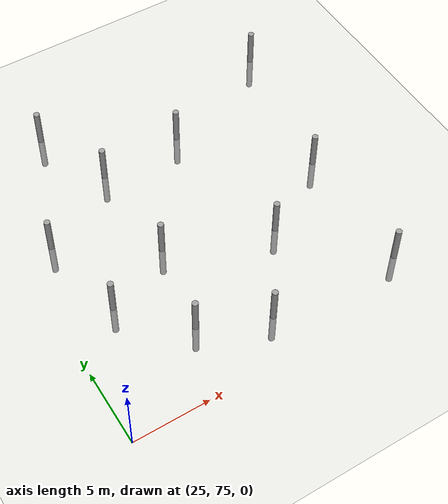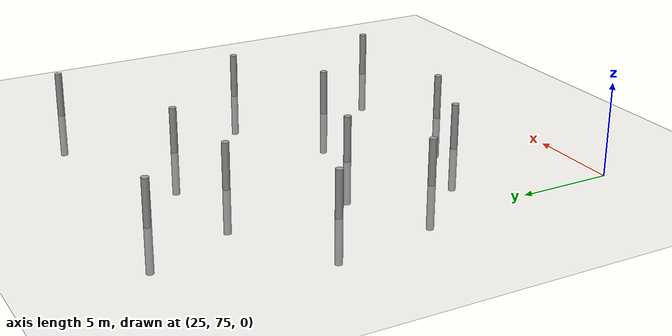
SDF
<sdf version="1.6">
 <world name="default">
  <model name="ground_plane">
   <static>1</static>
   <link name="link">
    <collision name="collision">
     <geometry><plane><normal>0 0 1</normal><size>100 100</size></plane></geometry>
     <surface><friction><ode><mu>100</mu><mu2>50</mu2></ode></friction></surface>
    </collision>
    <visual name="visual">
     <cast_shadows>0</cast_shadows>
     <geometry><plane><normal>0 0 1</normal><size>100 100</size></plane></geometry>
     <material>
      <script><uri>file://media/materials/scripts/gazebo.material</uri><name>Gazebo/Grey</name></script>
     </material>
    </visual>
   </link>
  </model>
  <model name="empty_pillars_1">
   <model name="empty_pillar_clone_1">
    <link name="link">
     <inertial>
      <mass>1</mass>
      <inertia><ixx>0.145833</ixx><ixy>0</ixy><ixz>0</ixz><iyy>0.145833</iyy><iyz>0</iyz><izz>0.125</izz></inertia>
     </inertial>
     <visual name="visual">
      <geometry><cylinder><radius>0.2</radius><length>5</length></cylinder></geometry>
      <material>
       <script><name>Gazebo/Grey</name><uri>file://media/materials/scripts/gazebo.material</uri></script>
       <shader type="vertex"><normal_map>__default__</normal_map></shader>
       <ambient>0.3 0.3 0.3 1</ambient>
       <diffuse>0.7 0.7 0.7 1</diffuse>
       <specular>0.01 0.01 0.01 1</specular>
       <emissive>0 0 0 1</emissive>
      </material>
     </visual>
     <collision name="collision">
      <geometry><cylinder><radius>0.05</radius><length>5</length></cylinder></geometry>
      <surface>
       <friction>
        <ode><mu>1</mu><mu2>1</mu2><fdir1>0 0 0</fdir1><slip1>0</slip1><slip2>0</slip2></ode>
        <torsional>
         <coefficient>1</coefficient>
         <patch_radius>0</patch_radius>
         <surface_radius>0</surface_radius>
         <use_patch_radius>1</use_patch_radius>
         <ode><slip>0</slip></ode>
        </torsional>
       </friction>
       <bounce><restitution_coefficient>0</restitution_coefficient><threshold>1e+06</threshold></bounce>
       <contact>
        <collide_without_contact>0</collide_without_contact>
        <collide_without_contact_bitmask>1</collide_without_contact_bitmask>
        <collide_bitmask>1</collide_bitmask>
        <ode>
         <soft_cfm>0</soft_cfm>
         <soft_erp>0.2</soft_erp>
         <kp>1e+13</kp>
         <kd>1</kd>
         <max_vel>0.01</max_vel>
         <min_depth>0</min_depth>
        </ode>
        <bullet>
         <split_impulse>1</split_impulse>
         <split_impulse_penetration_threshold>-0.01</split_impulse_penetration_threshold>
         <soft_cfm>0</soft_cfm>
         <soft_erp>0.2</soft_erp>
         <kp>1e+13</kp>
         <kd>1</kd>
        </bullet>
       </contact>
      </surface>
     </collision>
    </link>
    <static>0</static>
    <pose>8.92248 2.14838 0 0 -0 0</pose>
   </model>
   <model name="empty_pillar_clone_26">
    <link name="link">
     <inertial>
      <mass>1</mass>
      <inertia><ixx>0.145833</ixx><ixy>0</ixy><ixz>0</ixz><iyy>0.145833</iyy><iyz>0</iyz><izz>0.125</izz></inertia>
     </inertial>
     <visual name="visual">
      <geometry><cylinder><radius>0.2</radius><length>5</length></cylinder></geometry>
      <material>
       <script><name>Gazebo/Grey</name><uri>file://media/materials/scripts/gazebo.material</uri></script>
       <shader type="vertex"><normal_map>__default__</normal_map></shader>
       <ambient>0.3 0.3 0.3 1</ambient>
       <diffuse>0.7 0.7 0.7 1</diffuse>
       <specular>0.01 0.01 0.01 1</specular>
       <emissive>0 0 0 1</emissive>
      </material>
     </visual>
     <collision name="collision">
      <geometry><cylinder><radius>0.05</radius><length>5</length></cylinder></geometry>
      <surface>
       <friction>
        <ode><mu>1</mu><mu2>1</mu2><fdir1>0 0 0</fdir1><slip1>0</slip1><slip2>0</slip2></ode>
        <torsional>
         <coefficient>1</coefficient>
         <patch_radius>0</patch_radius>
         <surface_radius>0</surface_radius>
         <use_patch_radius>1</use_patch_radius>
         <ode><slip>0</slip></ode>
        </torsional>
       </friction>
       <bounce><restitution_coefficient>0</restitution_coefficient><threshold>1e+06</threshold></bounce>
       <contact>
        <collide_without_contact>0</collide_without_contact>
        <collide_without_contact_bitmask>1</collide_without_contact_bitmask>
        <collide_bitmask>1</collide_bitmask>
        <ode>
         <soft_cfm>0</soft_cfm>
         <soft_erp>0.2</soft_erp>
         <kp>1e+13</kp>
         <kd>1</kd>
         <max_vel>0.01</max_vel>
         <min_depth>0</min_depth>
        </ode>
        <bullet>
         <split_impulse>1</split_impulse>
         <split_impulse_penetration_threshold>-0.01</split_impulse_penetration_threshold>
         <soft_cfm>0</soft_cfm>
         <soft_erp>0.2</soft_erp>
         <kp>1e+13</kp>
         <kd>1</kd>
        </bullet>
       </contact>
      </surface>
     </collision>
    </link>
    <static>0</static>
    <pose>7.70652 20.1444 0 0 -0 0</pose>
   </model>
   <model name="empty_pillar_clone_27">
    <link name="link">
     <inertial>
      <mass>1</mass>
      <inertia><ixx>0.145833</ixx><ixy>0</ixy><ixz>0</ixz><iyy>0.145833</iyy><iyz>0</iyz><izz>0.125</izz></inertia>
     </inertial>
     <visual name="visual">
      <geometry><cylinder><radius>0.2</radius><length>5</length></cylinder></geometry>
      <material>
       <script><name>Gazebo/Grey</name><uri>file://media/materials/scripts/gazebo.material</uri></script>
       <shader type="vertex"><normal_map>__default__</normal_map></shader>
       <ambient>0.3 0.3 0.3 1</ambient>
       <diffuse>0.7 0.7 0.7 1</diffuse>
       <specular>0.01 0.01 0.01 1</specular>
       <emissive>0 0 0 1</emissive>
      </material>
     </visual>
     <collision name="collision">
      <geometry><cylinder><radius>0.05</radius><length>5</length></cylinder></geometry>
      <surface>
       <friction>
        <ode><mu>1</mu><mu2>1</mu2><fdir1>0 0 0</fdir1><slip1>0</slip1><slip2>0</slip2></ode>
        <torsional>
         <coefficient>1</coefficient>
         <patch_radius>0</patch_radius>
         <surface_radius>0</surface_radius>
         <use_patch_radius>1</use_patch_radius>
         <ode><slip>0</slip></ode>
        </torsional>
       </friction>
       <bounce><restitution_coefficient>0</restitution_coefficient><threshold>1e+06</threshold></bounce>
       <contact>
        <collide_without_contact>0</collide_without_contact>
        <collide_without_contact_bitmask>1</collide_without_contact_bitmask>
        <collide_bitmask>1</collide_bitmask>
        <ode>
         <soft_cfm>0</soft_cfm>
         <soft_erp>0.2</soft_erp>
         <kp>1e+13</kp>
         <kd>1</kd>
         <max_vel>0.01</max_vel>
         <min_depth>0</min_depth>
        </ode>
        <bullet>
         <split_impulse>1</split_impulse>
         <split_impulse_penetration_threshold>-0.01</split_impulse_penetration_threshold>
         <soft_cfm>0</soft_cfm>
         <soft_erp>0.2</soft_erp>
         <kp>1e+13</kp>
         <kd>1</kd>
        </bullet>
       </contact>
      </surface>
     </collision>
    </link>
    <static>0</static>
    <pose>4.32163 11.823 0 0 -0 0</pose>
   </model>
   <model name="empty_pillar_clone_28">
    <link name="link">
     <inertial>
      <mass>1</mass>
      <inertia><ixx>0.145833</ixx><ixy>0</ixy><ixz>0</ixz><iyy>0.145833</iyy><iyz>0</iyz><izz>0.125</izz></inertia>
     </inertial>
     <visual name="visual">
      <geometry><cylinder><radius>0.2</radius><length>5</length></cylinder></geometry>
      <material>
       <script><name>Gazebo/Grey</name><uri>file://media/materials/scripts/gazebo.material</uri></script>
       <shader type="vertex"><normal_map>__default__</normal_map></shader>
       <ambient>0.3 0.3 0.3 1</ambient>
       <diffuse>0.7 0.7 0.7 1</diffuse>
       <specular>0.01 0.01 0.01 1</specular>
       <emissive>0 0 0 1</emissive>
      </material>
     </visual>
     <collision name="collision">
      <geometry><cylinder><radius>0.05</radius><length>5</length></cylinder></geometry>
      <surface>
       <friction>
        <ode><mu>1</mu><mu2>1</mu2><fdir1>0 0 0</fdir1><slip1>0</slip1><slip2>0</slip2></ode>
        <torsional>
         <coefficient>1</coefficient>
         <patch_radius>0</patch_radius>
         <surface_radius>0</surface_radius>
         <use_patch_radius>1</use_patch_radius>
         <ode><slip>0</slip></ode>
        </torsional>
       </friction>
       <bounce><restitution_coefficient>0</restitution_coefficient><threshold>1e+06</threshold></bounce>
       <contact>
        <collide_without_contact>0</collide_without_contact>
        <collide_without_contact_bitmask>1</collide_without_contact_bitmask>
        <collide_bitmask>1</collide_bitmask>
        <ode>
         <soft_cfm>0</soft_cfm>
         <soft_erp>0.2</soft_erp>
         <kp>1e+13</kp>
         <kd>1</kd>
         <max_vel>0.01</max_vel>
         <min_depth>0</min_depth>
        </ode>
        <bullet>
         <split_impulse>1</split_impulse>
         <split_impulse_penetration_threshold>-0.01</split_impulse_penetration_threshold>
         <soft_cfm>0</soft_cfm>
         <soft_erp>0.2</soft_erp>
         <kp>1e+13</kp>
         <kd>1</kd>
        </bullet>
       </contact>
      </surface>
     </collision>
    </link>
    <static>0</static>
    <pose>15.5447 15.5867 0 0 -0 0</pose>
   </model>
   <model name="empty_pillar_clone_29">
    <link name="link">
     <inertial>
      <mass>1</mass>
      <inertia><ixx>0.145833</ixx><ixy>0</ixy><ixz>0</ixz><iyy>0.145833</iyy><iyz>0</iyz><izz>0.125</izz></inertia>
     </inertial>
     <visual name="visual">
      <geometry><cylinder><radius>0.2</radius><length>5</length></cylinder></geometry>
      <material>
       <script><name>Gazebo/Grey</name><uri>file://media/materials/scripts/gazebo.material</uri></script>
       <shader type="vertex"><normal_map>__default__</normal_map></shader>
       <ambient>0.3 0.3 0.3 1</ambient>
       <diffuse>0.7 0.7 0.7 1</diffuse>
       <specular>0.01 0.01 0.01 1</specular>
       <emissive>0 0 0 1</emissive>
      </material>
     </visual>
     <collision name="collision">
      <geometry><cylinder><radius>0.05</radius><length>5</length></cylinder></geometry>
      <surface>
       <friction>
        <ode><mu>1</mu><mu2>1</mu2><fdir1>0 0 0</fdir1><slip1>0</slip1><slip2>0</slip2></ode>
        <torsional>
         <coefficient>1</coefficient>
         <patch_radius>0</patch_radius>
         <surface_radius>0</surface_radius>
         <use_patch_radius>1</use_patch_radius>
         <ode><slip>0</slip></ode>
        </torsional>
       </friction>
       <bounce><restitution_coefficient>0</restitution_coefficient><threshold>1e+06</threshold></bounce>
       <contact>
        <collide_without_contact>0</collide_without_contact>
        <collide_without_contact_bitmask>1</collide_without_contact_bitmask>
        <collide_bitmask>1</collide_bitmask>
        <ode>
         <soft_cfm>0</soft_cfm>
         <soft_erp>0.2</soft_erp>
         <kp>1e+13</kp>
         <kd>1</kd>
         <max_vel>0.01</max_vel>
         <min_depth>0</min_depth>
        </ode>
        <bullet>
         <split_impulse>1</split_impulse>
         <split_impulse_penetration_threshold>-0.01</split_impulse_penetration_threshold>
         <soft_cfm>0</soft_cfm>
         <soft_erp>0.2</soft_erp>
         <kp>1e+13</kp>
         <kd>1</kd>
        </bullet>
       </contact>
      </surface>
     </collision>
    </link>
    <static>0</static>
    <pose>10.08 8.0876 0 0 -0 0</pose>
   </model>
   <model name="empty_pillar_clone_30">
    <link name="link">
     <inertial>
      <mass>1</mass>
      <inertia><ixx>0.145833</ixx><ixy>0</ixy><ixz>0</ixz><iyy>0.145833</iyy><iyz>0</iyz><izz>0.125</izz></inertia>
     </inertial>
     <visual name="visual">
      <geometry><cylinder><radius>0.2</radius><length>5</length></cylinder></geometry>
      <material>
       <script><name>Gazebo/Grey</name><uri>file://media/materials/scripts/gazebo.material</uri></script>
       <shader type="vertex"><normal_map>__default__</normal_map></shader>
       <ambient>0.3 0.3 0.3 1</ambient>
       <diffuse>0.7 0.7 0.7 1</diffuse>
       <specular>0.01 0.01 0.01 1</specular>
       <emissive>0 0 0 1</emissive>
      </material>
     </visual>
     <collision name="collision">
      <geometry><cylinder><radius>0.05</radius><length>5</length></cylinder></geometry>
      <surface>
       <friction>
        <ode><mu>1</mu><mu2>1</mu2><fdir1>0 0 0</fdir1><slip1>0</slip1><slip2>0</slip2></ode>
        <torsional>
         <coefficient>1</coefficient>
         <patch_radius>0</patch_radius>
         <surface_radius>0</surface_radius>
         <use_patch_radius>1</use_patch_radius>
         <ode><slip>0</slip></ode>
        </torsional>
       </friction>
       <bounce><restitution_coefficient>0</restitution_coefficient><threshold>1e+06</threshold></bounce>
       <contact>
        <collide_without_contact>0</collide_without_contact>
        <collide_without_contact_bitmask>1</collide_without_contact_bitmask>
        <collide_bitmask>1</collide_bitmask>
        <ode>
         <soft_cfm>0</soft_cfm>
         <soft_erp>0.2</soft_erp>
         <kp>1e+13</kp>
         <kd>1</kd>
         <max_vel>0.01</max_vel>
         <min_depth>0</min_depth>
        </ode>
        <bullet>
         <split_impulse>1</split_impulse>
         <split_impulse_penetration_threshold>-0.01</split_impulse_penetration_threshold>
         <soft_cfm>0</soft_cfm>
         <soft_erp>0.2</soft_erp>
         <kp>1e+13</kp>
         <kd>1</kd>
        </bullet>
       </contact>
      </surface>
     </collision>
    </link>
    <static>0</static>
    <pose>23.752 19.2231 0 0 -0 0</pose>
   </model>
   <model name="empty_pillar_clone_31">
    <link name="link">
     <inertial>
      <mass>1</mass>
      <inertia><ixx>0.145833</ixx><ixy>0</ixy><ixz>0</ixz><iyy>0.145833</iyy><iyz>0</iyz><izz>0.125</izz></inertia>
     </inertial>
     <visual name="visual">
      <geometry><cylinder><radius>0.2</radius><length>5</length></cylinder></geometry>
      <material>
       <script><name>Gazebo/Grey</name><uri>file://media/materials/scripts/gazebo.material</uri></script>
       <shader type="vertex"><normal_map>__default__</normal_map></shader>
       <ambient>0.3 0.3 0.3 1</ambient>
       <diffuse>0.7 0.7 0.7 1</diffuse>
       <specular>0.01 0.01 0.01 1</specular>
       <emissive>0 0 0 1</emissive>
      </material>
     </visual>
     <collision name="collision">
      <geometry><cylinder><radius>0.05</radius><length>5</length></cylinder></geometry>
      <surface>
       <friction>
        <ode><mu>1</mu><mu2>1</mu2><fdir1>0 0 0</fdir1><slip1>0</slip1><slip2>0</slip2></ode>
        <torsional>
         <coefficient>1</coefficient>
         <patch_radius>0</patch_radius>
         <surface_radius>0</surface_radius>
         <use_patch_radius>1</use_patch_radius>
         <ode><slip>0</slip></ode>
        </torsional>
       </friction>
       <bounce><restitution_coefficient>0</restitution_coefficient><threshold>1e+06</threshold></bounce>
       <contact>
        <collide_without_contact>0</collide_without_contact>
        <collide_without_contact_bitmask>1</collide_without_contact_bitmask>
        <collide_bitmask>1</collide_bitmask>
        <ode>
         <soft_cfm>0</soft_cfm>
         <soft_erp>0.2</soft_erp>
         <kp>1e+13</kp>
         <kd>1</kd>
         <max_vel>0.01</max_vel>
         <min_depth>0</min_depth>
        </ode>
        <bullet>
         <split_impulse>1</split_impulse>
         <split_impulse_penetration_threshold>-0.01</split_impulse_penetration_threshold>
         <soft_cfm>0</soft_cfm>
         <soft_erp>0.2</soft_erp>
         <kp>1e+13</kp>
         <kd>1</kd>
        </bullet>
       </contact>
      </surface>
     </collision>
    </link>
    <static>0</static>
    <pose>22.0722 9.04182 0 0 -0 0</pose>
   </model>
   <model name="empty_pillar_clone_32">
    <link name="link">
     <inertial>
      <mass>1</mass>
      <inertia><ixx>0.145833</ixx><ixy>0</ixy><ixz>0</ixz><iyy>0.145833</iyy><iyz>0</iyz><izz>0.125</izz></inertia>
     </inertial>
     <visual name="visual">
      <geometry><cylinder><radius>0.2</radius><length>5</length></cylinder></geometry>
      <material>
       <script><name>Gazebo/Grey</name><uri>file://media/materials/scripts/gazebo.material</uri></script>
       <shader type="vertex"><normal_map>__default__</normal_map></shader>
       <ambient>0.3 0.3 0.3 1</ambient>
       <diffuse>0.7 0.7 0.7 1</diffuse>
       <specular>0.01 0.01 0.01 1</specular>
       <emissive>0 0 0 1</emissive>
      </material>
     </visual>
     <collision name="collision">
      <geometry><cylinder><radius>0.05</radius><length>5</length></cylinder></geometry>
      <surface>
       <friction>
        <ode><mu>1</mu><mu2>1</mu2><fdir1>0 0 0</fdir1><slip1>0</slip1><slip2>0</slip2></ode>
        <torsional>
         <coefficient>1</coefficient>
         <patch_radius>0</patch_radius>
         <surface_radius>0</surface_radius>
         <use_patch_radius>1</use_patch_radius>
         <ode><slip>0</slip></ode>
        </torsional>
       </friction>
       <bounce><restitution_coefficient>0</restitution_coefficient><threshold>1e+06</threshold></bounce>
       <contact>
        <collide_without_contact>0</collide_without_contact>
        <collide_without_contact_bitmask>1</collide_without_contact_bitmask>
        <collide_bitmask>1</collide_bitmask>
        <ode>
         <soft_cfm>0</soft_cfm>
         <soft_erp>0.2</soft_erp>
         <kp>1e+13</kp>
         <kd>1</kd>
         <max_vel>0.01</max_vel>
         <min_depth>0</min_depth>
        </ode>
        <bullet>
         <split_impulse>1</split_impulse>
         <split_impulse_penetration_threshold>-0.01</split_impulse_penetration_threshold>
         <soft_cfm>0</soft_cfm>
         <soft_erp>0.2</soft_erp>
         <kp>1e+13</kp>
         <kd>1</kd>
        </bullet>
       </contact>
      </surface>
     </collision>
    </link>
    <static>0</static>
    <pose>21.9854 0.15966 0 0 -0 0</pose>
   </model>
   <model name="empty_pillar_clone_49">
    <link name="link">
     <inertial>
      <mass>1</mass>
      <inertia><ixx>0.145833</ixx><ixy>0</ixy><ixz>0</ixz><iyy>0.145833</iyy><iyz>0</iyz><izz>0.125</izz></inertia>
     </inertial>
     <visual name="visual">
      <geometry><cylinder><radius>0.2</radius><length>5</length></cylinder></geometry>
      <material>
       <script><name>Gazebo/Grey</name><uri>file://media/materials/scripts/gazebo.material</uri></script>
       <shader type="vertex"><normal_map>__default__</normal_map></shader>
       <ambient>0.3 0.3 0.3 1</ambient>
       <diffuse>0.7 0.7 0.7 1</diffuse>
       <specular>0.01 0.01 0.01 1</specular>
       <emissive>0 0 0 1</emissive>
      </material>
     </visual>
     <collision name="collision">
      <geometry><cylinder><radius>0.05</radius><length>5</length></cylinder></geometry>
      <surface>
       <friction>
        <ode><mu>1</mu><mu2>1</mu2><fdir1>0 0 0</fdir1><slip1>0</slip1><slip2>0</slip2></ode>
        <torsional>
         <coefficient>1</coefficient>
         <patch_radius>0</patch_radius>
         <surface_radius>0</surface_radius>
         <use_patch_radius>1</use_patch_radius>
         <ode><slip>0</slip></ode>
        </torsional>
       </friction>
       <bounce><restitution_coefficient>0</restitution_coefficient><threshold>1e+06</threshold></bounce>
       <contact>
        <collide_without_contact>0</collide_without_contact>
        <collide_without_contact_bitmask>1</collide_without_contact_bitmask>
        <collide_bitmask>1</collide_bitmask>
        <ode>
         <soft_cfm>0</soft_cfm>
         <soft_erp>0.2</soft_erp>
         <kp>1e+13</kp>
         <kd>1</kd>
         <max_vel>0.01</max_vel>
         <min_depth>0</min_depth>
        </ode>
        <bullet>
         <split_impulse>1</split_impulse>
         <split_impulse_penetration_threshold>-0.01</split_impulse_penetration_threshold>
         <soft_cfm>0</soft_cfm>
         <soft_erp>0.2</soft_erp>
         <kp>1e+13</kp>
         <kd>1</kd>
        </bullet>
       </contact>
      </surface>
     </collision>
    </link>
    <static>0</static>
    <pose>9.84768 15.1425 0 0 -0 0</pose>
   </model>
   <model name="empty_pillar_clone_55">
    <link name="link">
     <inertial>
      <mass>1</mass>
      <inertia><ixx>0.145833</ixx><ixy>0</ixy><ixz>0</ixz><iyy>0.145833</iyy><iyz>0</iyz><izz>0.125</izz></inertia>
     </inertial>
     <visual name="visual">
      <geometry><cylinder><radius>0.2</radius><length>5</length></cylinder></geometry>
      <material>
       <script><name>Gazebo/Grey</name><uri>file://media/materials/scripts/gazebo.material</uri></script>
       <shader type="vertex"><normal_map>__default__</normal_map></shader>
       <ambient>0.3 0.3 0.3 1</ambient>
       <diffuse>0.7 0.7 0.7 1</diffuse>
       <specular>0.01 0.01 0.01 1</specular>
       <emissive>0 0 0 1</emissive>
      </material>
     </visual>
     <collision name="collision">
      <geometry><cylinder><radius>0.05</radius><length>5</length></cylinder></geometry>
      <surface>
       <friction>
        <ode><mu>1</mu><mu2>1</mu2><fdir1>0 0 0</fdir1><slip1>0</slip1><slip2>0</slip2></ode>
        <torsional>
         <coefficient>1</coefficient>
         <patch_radius>0</patch_radius>
         <surface_radius>0</surface_radius>
         <use_patch_radius>1</use_patch_radius>
         <ode><slip>0</slip></ode>
        </torsional>
       </friction>
       <bounce><restitution_coefficient>0</restitution_coefficient><threshold>1e+06</threshold></bounce>
       <contact>
        <collide_without_contact>0</collide_without_contact>
        <collide_without_contact_bitmask>1</collide_without_contact_bitmask>
        <collide_bitmask>1</collide_bitmask>
        <ode>
         <soft_cfm>0</soft_cfm>
         <soft_erp>0.2</soft_erp>
         <kp>1e+13</kp>
         <kd>1</kd>
         <max_vel>0.01</max_vel>
         <min_depth>0</min_depth>
        </ode>
        <bullet>
         <split_impulse>1</split_impulse>
         <split_impulse_penetration_threshold>-0.01</split_impulse_penetration_threshold>
         <soft_cfm>0</soft_cfm>
         <soft_erp>0.2</soft_erp>
         <kp>1e+13</kp>
         <kd>1</kd>
        </bullet>
       </contact>
      </surface>
     </collision>
    </link>
    <static>0</static>
    <pose>13.2247 0.382706 0 0 -0 0</pose>
   </model>
   <model name="empty_pillar_clone_57">
    <link name="link">
     <inertial>
      <mass>1</mass>
      <inertia><ixx>0.145833</ixx><ixy>0</ixy><ixz>0</ixz><iyy>0.145833</iyy><iyz>0</iyz><izz>0.125</izz></inertia>
     </inertial>
     <visual name="visual">
      <geometry><cylinder><radius>0.2</radius><length>5</length></cylinder></geometry>
      <material>
       <script><name>Gazebo/Grey</name><uri>file://media/materials/scripts/gazebo.material</uri></script>
       <shader type="vertex"><normal_map>__default__</normal_map></shader>
       <ambient>0.3 0.3 0.3 1</ambient>
       <diffuse>0.7 0.7 0.7 1</diffuse>
       <specular>0.01 0.01 0.01 1</specular>
       <emissive>0 0 0 1</emissive>
      </material>
     </visual>
     <collision name="collision">
      <geometry><cylinder><radius>0.05</radius><length>5</length></cylinder></geometry>
      <surface>
       <friction>
        <ode><mu>1</mu><mu2>1</mu2><fdir1>0 0 0</fdir1><slip1>0</slip1><slip2>0</slip2></ode>
        <torsional>
         <coefficient>1</coefficient>
         <patch_radius>0</patch_radius>
         <surface_radius>0</surface_radius>
         <use_patch_radius>1</use_patch_radius>
         <ode><slip>0</slip></ode>
        </torsional>
       </friction>
       <bounce><restitution_coefficient>0</restitution_coefficient><threshold>1e+06</threshold></bounce>
       <contact>
        <collide_without_contact>0</collide_without_contact>
        <collide_without_contact_bitmask>1</collide_without_contact_bitmask>
        <collide_bitmask>1</collide_bitmask>
        <ode>
         <soft_cfm>0</soft_cfm>
         <soft_erp>0.2</soft_erp>
         <kp>1e+13</kp>
         <kd>1</kd>
         <max_vel>0.01</max_vel>
         <min_depth>0</min_depth>
        </ode>
        <bullet>
         <split_impulse>1</split_impulse>
         <split_impulse_penetration_threshold>-0.01</split_impulse_penetration_threshold>
         <soft_cfm>0</soft_cfm>
         <soft_erp>0.2</soft_erp>
         <kp>1e+13</kp>
         <kd>1</kd>
        </bullet>
       </contact>
      </surface>
     </collision>
    </link>
    <static>0</static>
    <pose>5.4355 5.86468 0 0 -0 0</pose>
   </model>
   <model name="empty_pillar_clone_7">
    <link name="link">
     <inertial>
      <mass>1</mass>
      <inertia><ixx>0.145833</ixx><ixy>0</ixy><ixz>0</ixz><iyy>0.145833</iyy><iyz>0</iyz><izz>0.125</izz></inertia>
     </inertial>
     <visual name="visual">
      <geometry><cylinder><radius>0.2</radius><length>5</length></cylinder></geometry>
      <material>
       <script><name>Gazebo/Grey</name><uri>file://media/materials/scripts/gazebo.material</uri></script>
       <shader type="vertex"><normal_map>__default__</normal_map></shader>
       <ambient>0.3 0.3 0.3 1</ambient>
       <diffuse>0.7 0.7 0.7 1</diffuse>
       <specular>0.01 0.01 0.01 1</specular>
       <emissive>0 0 0 1</emissive>
      </material>
     </visual>
     <collision name="collision">
      <geometry><cylinder><radius>0.05</radius><length>5</length></cylinder></geometry>
      <surface>
       <friction>
        <ode><mu>1</mu><mu2>1</mu2><fdir1>0 0 0</fdir1><slip1>0</slip1><slip2>0</slip2></ode>
        <torsional>
         <coefficient>1</coefficient>
         <patch_radius>0</patch_radius>
         <surface_radius>0</surface_radius>
         <use_patch_radius>1</use_patch_radius>
         <ode><slip>0</slip></ode>
        </torsional>
       </friction>
       <bounce><restitution_coefficient>0</restitution_coefficient><threshold>1e+06</threshold></bounce>
       <contact>
        <collide_without_contact>0</collide_without_contact>
        <collide_without_contact_bitmask>1</collide_without_contact_bitmask>
        <collide_bitmask>1</collide_bitmask>
        <ode>
         <soft_cfm>0</soft_cfm>
         <soft_erp>0.2</soft_erp>
         <kp>1e+13</kp>
         <kd>1</kd>
         <max_vel>0.01</max_vel>
         <min_depth>0</min_depth>
        </ode>
        <bullet>
         <split_impulse>1</split_impulse>
         <split_impulse_penetration_threshold>-0.01</split_impulse_penetration_threshold>
         <soft_cfm>0</soft_cfm>
         <soft_erp>0.2</soft_erp>
         <kp>1e+13</kp>
         <kd>1</kd>
        </bullet>
       </contact>
      </surface>
     </collision>
    </link>
    <static>0</static>
    <pose>16.9242 5.74519 0 0 -0 0</pose>
   </model>
   <static>0</static>
   <pose>22.8728 77.4317 0 0 -0 0</pose>
  </model>
 </world>
</sdf>
